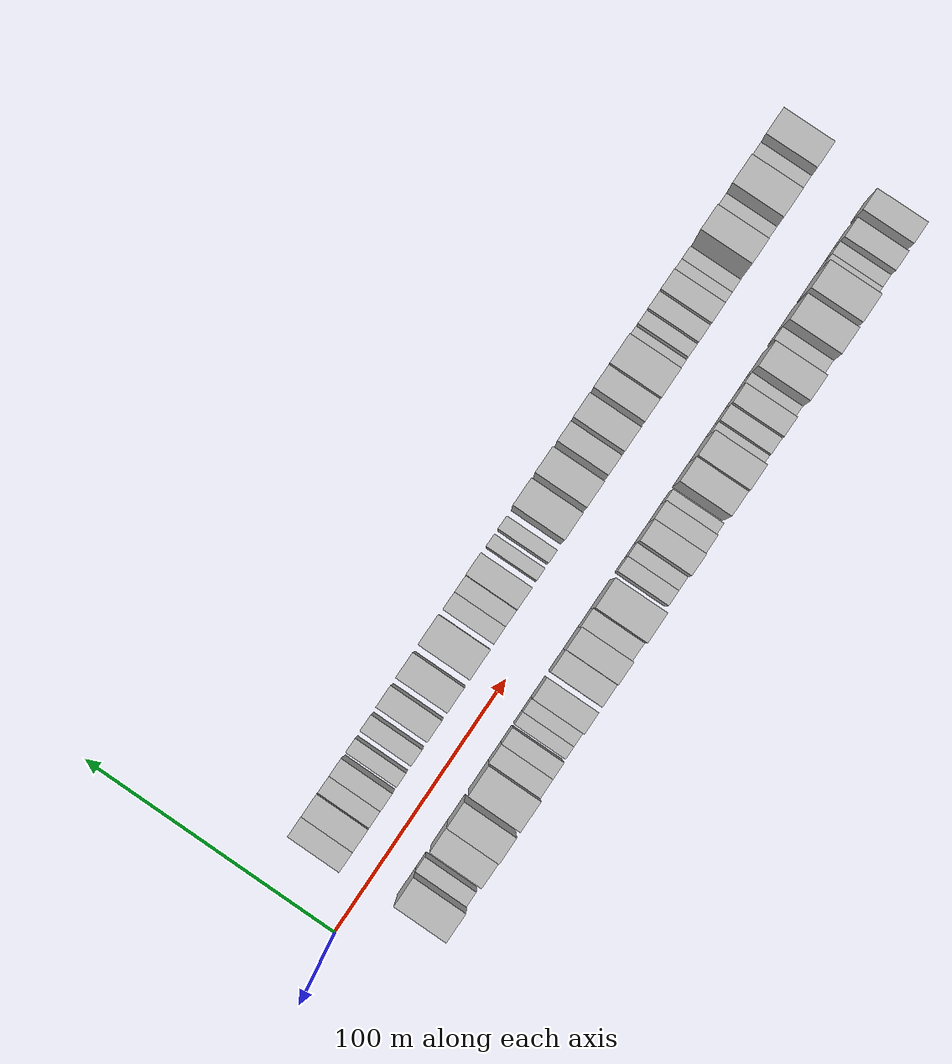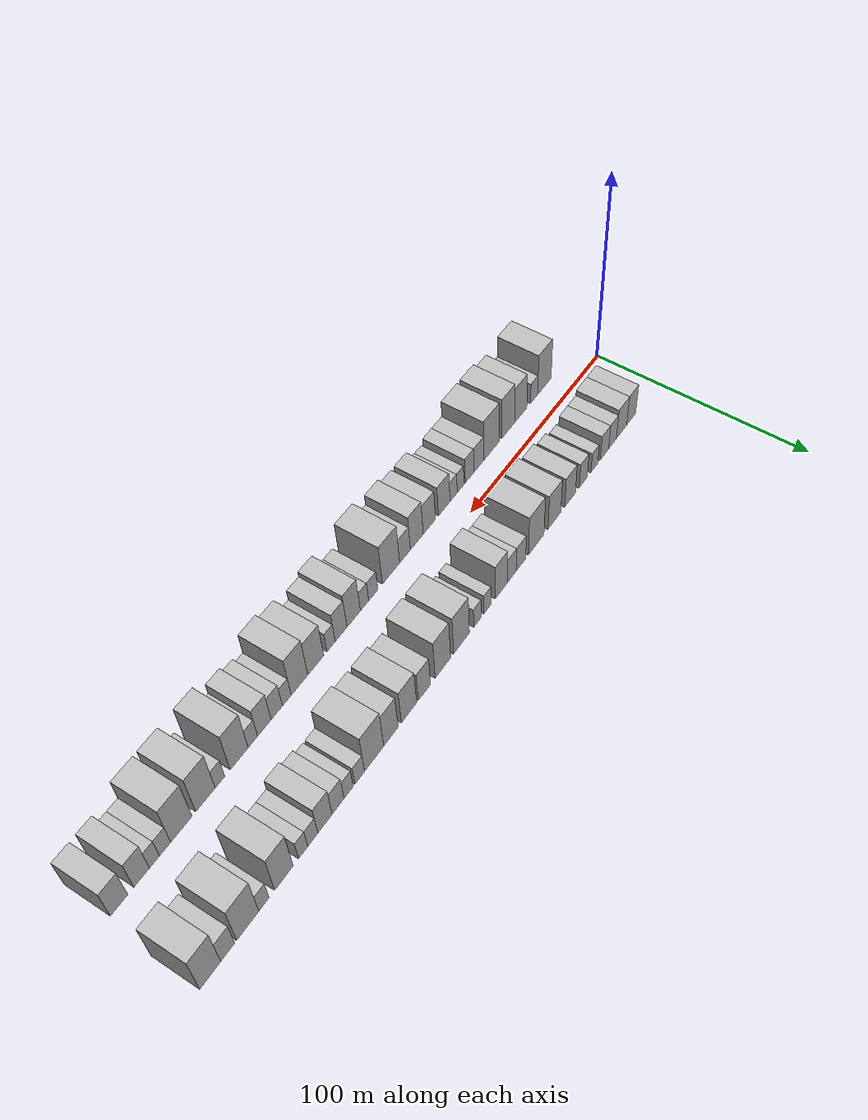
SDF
<sdf version="1.6">
 <world name="default">
  <scene>
   <sky><clouds><speed>12</speed></clouds></sky>
   <ambient>0.4 0.4 0.4 1</ambient>
   <background>0.7 0.7 0.7 1</background>
   <shadows>1</shadows>
  </scene>
  <gravity>0 0 -9.8066</gravity>
  <magnetic_field>6e-06 2.3e-05 -4.2e-05</magnetic_field>
  <physics default="0" name="default_physics" type="ode">
   <ode>
    <solver>
     <type>quick</type>
     <iters>10</iters>
     <sor>1.0</sor>
     <use_dynamic_moi_rescaling>0</use_dynamic_moi_rescaling>
    </solver>
    <constraints>
     <cfm>0</cfm>
     <erp>0.2</erp>
     <contact_max_correcting_vel>100</contact_max_correcting_vel>
     <contact_surface_layer>0.001</contact_surface_layer>
    </constraints>
   </ode>
   <max_step_size>0.004</max_step_size>
   <real_time_factor>1</real_time_factor>
   <real_time_update_rate>250</real_time_update_rate>
  </physics>
  <light name="sun" type="directional">
   <pose>0 0 10 0 0 0</pose>
   <diffuse>0.8 0.8 0.8 1</diffuse>
   <specular>0.2 0.2 0.2 1</specular>
   <attenuation>
    <range>1000</range>
    <constant>0.9</constant>
    <linear>0.01</linear>
    <quadratic>0.001</quadratic>
   </attenuation>
   <direction>-0.5 0.1 -0.9</direction>
  </light>
  <model name="building_1">
   <static>1</static>
   <pose>23.7935 20.0000 0 0.000000 0.000000 1.570796</pose>
   <link name="link">
    <pose>0 0 9.00 0 0 0</pose>
    <collision name="collision"><geometry><box><size>20.0000 7.5870 18.0000</size></box></geometry></collision>
    <visual name="visual">
     <cast_shadows>0</cast_shadows>
     <geometry><box><size>20.0000 7.5870 18.0000</size></box></geometry>
     <material>
      <script>
       <uri>model://HANNAS_wall/materials/scripts</uri>
       <uri>model://HANNAS_wall/materials/textures</uri>
       <name>vrc/HANNAS_wall</name>
      </script>
     </material>
    </visual>
   </link>
  </model>
  <model name="building_2">
   <static>1</static>
   <pose>31.9652 20.0000 0 0.000000 0.000000 1.570796</pose>
   <link name="link">
    <pose>0 0 9.00 0 0 0</pose>
    <collision name="collision"><geometry><box><size>20.0000 8.7565 18.0000</size></box></geometry></collision>
    <visual name="visual">
     <cast_shadows>0</cast_shadows>
     <geometry><box><size>20.0000 8.7565 18.0000</size></box></geometry>
     <material>
      <script>
       <uri>model://HANNAS_wall/materials/scripts</uri>
       <uri>model://HANNAS_wall/materials/textures</uri>
       <name>vrc/HANNAS_wall</name>
      </script>
     </material>
    </visual>
   </link>
  </model>
  <model name="building_3">
   <static>1</static>
   <pose>39.5538 20.0000 0 0.000000 0.000000 1.570796</pose>
   <link name="link">
    <pose>0 0 7.50 0 0 0</pose>
    <collision name="collision"><geometry><box><size>20.0000 6.4206 15.0000</size></box></geometry></collision>
    <visual name="visual">
     <cast_shadows>0</cast_shadows>
     <geometry><box><size>20.0000 6.4206 15.0000</size></box></geometry>
     <material>
      <script>
       <uri>model://HANNAS_wall/materials/scripts</uri>
       <uri>model://HANNAS_wall/materials/textures</uri>
       <name>vrc/HANNAS_wall</name>
      </script>
     </material>
    </visual>
   </link>
  </model>
  <model name="building_4">
   <static>1</static>
   <pose>46.2032 20.0000 0 0.000000 0.000000 1.570796</pose>
   <link name="link">
    <pose>0 0 7.50 0 0 0</pose>
    <collision name="collision"><geometry><box><size>20.0000 6.8781 15.0000</size></box></geometry></collision>
    <visual name="visual">
     <cast_shadows>0</cast_shadows>
     <geometry><box><size>20.0000 6.8781 15.0000</size></box></geometry>
     <material>
      <script>
       <uri>model://HANNAS_wall/materials/scripts</uri>
       <uri>model://HANNAS_wall/materials/textures</uri>
       <name>vrc/HANNAS_wall</name>
      </script>
     </material>
    </visual>
   </link>
  </model>
  <model name="building_5">
   <static>1</static>
   <pose>54.4073 20.0000 0 0.000000 0.000000 1.570796</pose>
   <link name="link">
    <pose>0 0 6.00 0 0 0</pose>
    <collision name="collision"><geometry><box><size>20.0000 5.5302 12.0000</size></box></geometry></collision>
    <visual name="visual">
     <cast_shadows>0</cast_shadows>
     <geometry><box><size>20.0000 5.5302 12.0000</size></box></geometry>
     <material>
      <script>
       <uri>model://HANNAS_wall/materials/scripts</uri>
       <uri>model://HANNAS_wall/materials/textures</uri>
       <name>vrc/HANNAS_wall</name>
      </script>
     </material>
    </visual>
   </link>
  </model>
  <model name="building_6">
   <static>1</static>
   <pose>63.3594 20.0000 0 0.000000 0.000000 1.570796</pose>
   <link name="link">
    <pose>0 0 7.50 0 0 0</pose>
    <collision name="collision"><geometry><box><size>20.0000 6.3739 15.0000</size></box></geometry></collision>
    <visual name="visual">
     <cast_shadows>0</cast_shadows>
     <geometry><box><size>20.0000 6.3739 15.0000</size></box></geometry>
     <material>
      <script>
       <uri>model://HANNAS_wall/materials/scripts</uri>
       <uri>model://HANNAS_wall/materials/textures</uri>
       <name>vrc/HANNAS_wall</name>
      </script>
     </material>
    </visual>
   </link>
  </model>
  <model name="building_7">
   <static>1</static>
   <pose>73.7651 20.0000 0 0.000000 0.000000 1.570796</pose>
   <link name="link">
    <pose>0 0 9.00 0 0 0</pose>
    <collision name="collision"><geometry><box><size>20.0000 8.4375 18.0000</size></box></geometry></collision>
    <visual name="visual">
     <cast_shadows>0</cast_shadows>
     <geometry><box><size>20.0000 8.4375 18.0000</size></box></geometry>
     <material>
      <script>
       <uri>model://HANNAS_wall/materials/scripts</uri>
       <uri>model://HANNAS_wall/materials/textures</uri>
       <name>vrc/HANNAS_wall</name>
      </script>
     </material>
    </visual>
   </link>
  </model>
  <model name="building_8">
   <static>1</static>
   <pose>85.8713 20.0000 0 0.000000 0.000000 1.570796</pose>
   <link name="link">
    <pose>0 0 10.50 0 0 0</pose>
    <collision name="collision"><geometry><box><size>20.0000 9.7750 21.0000</size></box></geometry></collision>
    <visual name="visual">
     <cast_shadows>0</cast_shadows>
     <geometry><box><size>20.0000 9.7750 21.0000</size></box></geometry>
     <material>
      <script>
       <uri>model://HANNAS_wall/materials/scripts</uri>
       <uri>model://HANNAS_wall/materials/textures</uri>
       <name>vrc/HANNAS_wall</name>
      </script>
     </material>
    </visual>
   </link>
  </model>
  <model name="building_9">
   <static>1</static>
   <pose>99.5591 20.0000 0 0.000000 0.000000 1.570796</pose>
   <link name="link">
    <pose>0 0 12.00 0 0 0</pose>
    <collision name="collision"><geometry><box><size>20.0000 11.6007 24.0000</size></box></geometry></collision>
    <visual name="visual">
     <cast_shadows>0</cast_shadows>
     <geometry><box><size>20.0000 11.6007 24.0000</size></box></geometry>
     <material>
      <script>
       <uri>model://HANNAS_wall/materials/scripts</uri>
       <uri>model://HANNAS_wall/materials/textures</uri>
       <name>vrc/HANNAS_wall</name>
      </script>
     </material>
    </visual>
   </link>
  </model>
  <model name="building_10">
   <static>1</static>
   <pose>110.7818 20.0000 0 0.000000 0.000000 1.570796</pose>
   <link name="link">
    <pose>0 0 7.50 0 0 0</pose>
    <collision name="collision"><geometry><box><size>20.0000 6.8447 15.0000</size></box></geometry></collision>
    <visual name="visual">
     <cast_shadows>0</cast_shadows>
     <geometry><box><size>20.0000 6.8447 15.0000</size></box></geometry>
     <material>
      <script>
       <uri>model://HANNAS_wall/materials/scripts</uri>
       <uri>model://HANNAS_wall/materials/textures</uri>
       <name>vrc/HANNAS_wall</name>
      </script>
     </material>
    </visual>
   </link>
  </model>
  <model name="building_11">
   <static>1</static>
   <pose>117.4213 20.0000 0 0.000000 0.000000 1.570796</pose>
   <link name="link">
    <pose>0 0 7.50 0 0 0</pose>
    <collision name="collision"><geometry><box><size>20.0000 6.4342 15.0000</size></box></geometry></collision>
    <visual name="visual">
     <cast_shadows>0</cast_shadows>
     <geometry><box><size>20.0000 6.4342 15.0000</size></box></geometry>
     <material>
      <script>
       <uri>model://HANNAS_wall/materials/scripts</uri>
       <uri>model://HANNAS_wall/materials/textures</uri>
       <name>vrc/HANNAS_wall</name>
      </script>
     </material>
    </visual>
   </link>
  </model>
  <model name="building_12">
   <static>1</static>
   <pose>124.9499 20.0000 0 0.000000 0.000000 1.570796</pose>
   <link name="link">
    <pose>0 0 10.50 0 0 0</pose>
    <collision name="collision"><geometry><box><size>20.0000 8.6229 21.0000</size></box></geometry></collision>
    <visual name="visual">
     <cast_shadows>0</cast_shadows>
     <geometry><box><size>20.0000 8.6229 21.0000</size></box></geometry>
     <material>
      <script>
       <uri>model://HANNAS_wall/materials/scripts</uri>
       <uri>model://HANNAS_wall/materials/textures</uri>
       <name>vrc/HANNAS_wall</name>
      </script>
     </material>
    </visual>
   </link>
  </model>
  <model name="building_13">
   <static>1</static>
   <pose>134.7088 20.0000 0 0.000000 0.000000 1.570796</pose>
   <link name="link">
    <pose>0 0 6.00 0 0 0</pose>
    <collision name="collision"><geometry><box><size>20.0000 4.8948 12.0000</size></box></geometry></collision>
    <visual name="visual">
     <cast_shadows>0</cast_shadows>
     <geometry><box><size>20.0000 4.8948 12.0000</size></box></geometry>
     <material>
      <script>
       <uri>model://HANNAS_wall/materials/scripts</uri>
       <uri>model://HANNAS_wall/materials/textures</uri>
       <name>vrc/HANNAS_wall</name>
      </script>
     </material>
    </visual>
   </link>
  </model>
  <model name="building_14">
   <static>1</static>
   <pose>141.7410 20.0000 0 0.000000 0.000000 1.570796</pose>
   <link name="link">
    <pose>0 0 6.00 0 0 0</pose>
    <collision name="collision"><geometry><box><size>20.0000 5.1697 12.0000</size></box></geometry></collision>
    <visual name="visual">
     <cast_shadows>0</cast_shadows>
     <geometry><box><size>20.0000 5.1697 12.0000</size></box></geometry>
     <material>
      <script>
       <uri>model://HANNAS_wall/materials/scripts</uri>
       <uri>model://HANNAS_wall/materials/textures</uri>
       <name>vrc/HANNAS_wall</name>
      </script>
     </material>
    </visual>
   </link>
  </model>
  <model name="building_15">
   <static>1</static>
   <pose>152.6574 20.0000 0 0.000000 0.000000 1.570796</pose>
   <link name="link">
    <pose>0 0 12.00 0 0 0</pose>
    <collision name="collision"><geometry><box><size>20.0000 10.6631 24.0000</size></box></geometry></collision>
    <visual name="visual">
     <cast_shadows>0</cast_shadows>
     <geometry><box><size>20.0000 10.6631 24.0000</size></box></geometry>
     <material>
      <script>
       <uri>model://HANNAS_wall/materials/scripts</uri>
       <uri>model://HANNAS_wall/materials/textures</uri>
       <name>vrc/HANNAS_wall</name>
      </script>
     </material>
    </visual>
   </link>
  </model>
  <model name="building_16">
   <static>1</static>
   <pose>165.0884 20.0000 0 0.000000 0.000000 1.570796</pose>
   <link name="link">
    <pose>0 0 12.00 0 0 0</pose>
    <collision name="collision"><geometry><box><size>20.0000 10.1989 24.0000</size></box></geometry></collision>
    <visual name="visual">
     <cast_shadows>0</cast_shadows>
     <geometry><box><size>20.0000 10.1989 24.0000</size></box></geometry>
     <material>
      <script>
       <uri>model://HANNAS_wall/materials/scripts</uri>
       <uri>model://HANNAS_wall/materials/textures</uri>
       <name>vrc/HANNAS_wall</name>
      </script>
     </material>
    </visual>
   </link>
  </model>
  <model name="building_17">
   <static>1</static>
   <pose>177.1372 20.0000 0 0.000000 0.000000 1.570796</pose>
   <link name="link">
    <pose>0 0 9.00 0 0 0</pose>
    <collision name="collision"><geometry><box><size>20.0000 7.8987 18.0000</size></box></geometry></collision>
    <visual name="visual">
     <cast_shadows>0</cast_shadows>
     <geometry><box><size>20.0000 7.8987 18.0000</size></box></geometry>
     <material>
      <script>
       <uri>model://HANNAS_wall/materials/scripts</uri>
       <uri>model://HANNAS_wall/materials/textures</uri>
       <name>vrc/HANNAS_wall</name>
      </script>
     </material>
    </visual>
   </link>
  </model>
  <model name="building_18">
   <static>1</static>
   <pose>186.9221 20.0000 0 0.000000 0.000000 1.570796</pose>
   <link name="link">
    <pose>0 0 10.50 0 0 0</pose>
    <collision name="collision"><geometry><box><size>20.0000 9.6711 21.0000</size></box></geometry></collision>
    <visual name="visual">
     <cast_shadows>0</cast_shadows>
     <geometry><box><size>20.0000 9.6711 21.0000</size></box></geometry>
     <material>
      <script>
       <uri>model://HANNAS_wall/materials/scripts</uri>
       <uri>model://HANNAS_wall/materials/textures</uri>
       <name>vrc/HANNAS_wall</name>
      </script>
     </material>
    </visual>
   </link>
  </model>
  <model name="building_19">
   <static>1</static>
   <pose>198.2208 20.0000 0 0.000000 0.000000 1.570796</pose>
   <link name="link">
    <pose>0 0 10.50 0 0 0</pose>
    <collision name="collision"><geometry><box><size>20.0000 8.9264 21.0000</size></box></geometry></collision>
    <visual name="visual">
     <cast_shadows>0</cast_shadows>
     <geometry><box><size>20.0000 8.9264 21.0000</size></box></geometry>
     <material>
      <script>
       <uri>model://HANNAS_wall/materials/scripts</uri>
       <uri>model://HANNAS_wall/materials/textures</uri>
       <name>vrc/HANNAS_wall</name>
      </script>
     </material>
    </visual>
   </link>
  </model>
  <model name="building_20">
   <static>1</static>
   <pose>208.4847 20.0000 0 0.000000 0.000000 1.570796</pose>
   <link name="link">
    <pose>0 0 12.00 0 0 0</pose>
    <collision name="collision"><geometry><box><size>20.0000 11.6013 24.0000</size></box></geometry></collision>
    <visual name="visual">
     <cast_shadows>0</cast_shadows>
     <geometry><box><size>20.0000 11.6013 24.0000</size></box></geometry>
     <material>
      <script>
       <uri>model://HANNAS_wall/materials/scripts</uri>
       <uri>model://HANNAS_wall/materials/textures</uri>
       <name>vrc/HANNAS_wall</name>
      </script>
     </material>
    </visual>
   </link>
  </model>
  <model name="building_21">
   <static>1</static>
   <pose>217.1560 20.0000 0 0.000000 0.000000 1.570796</pose>
   <link name="link">
    <pose>0 0 6.00 0 0 0</pose>
    <collision name="collision"><geometry><box><size>20.0000 5.7415 12.0000</size></box></geometry></collision>
    <visual name="visual">
     <cast_shadows>0</cast_shadows>
     <geometry><box><size>20.0000 5.7415 12.0000</size></box></geometry>
     <material>
      <script>
       <uri>model://HANNAS_wall/materials/scripts</uri>
       <uri>model://HANNAS_wall/materials/textures</uri>
       <name>vrc/HANNAS_wall</name>
      </script>
     </material>
    </visual>
   </link>
  </model>
  <model name="building_22">
   <static>1</static>
   <pose>223.7144 20.0000 0 0.000000 0.000000 1.570796</pose>
   <link name="link">
    <pose>0 0 6.00 0 0 0</pose>
    <collision name="collision"><geometry><box><size>20.0000 5.3753 12.0000</size></box></geometry></collision>
    <visual name="visual">
     <cast_shadows>0</cast_shadows>
     <geometry><box><size>20.0000 5.3753 12.0000</size></box></geometry>
     <material>
      <script>
       <uri>model://HANNAS_wall/materials/scripts</uri>
       <uri>model://HANNAS_wall/materials/textures</uri>
       <name>vrc/HANNAS_wall</name>
      </script>
     </material>
    </visual>
   </link>
  </model>
  <model name="building_23">
   <static>1</static>
   <pose>229.8600 20.0000 0 0.000000 0.000000 1.570796</pose>
   <link name="link">
    <pose>0 0 7.50 0 0 0</pose>
    <collision name="collision"><geometry><box><size>20.0000 6.9158 15.0000</size></box></geometry></collision>
    <visual name="visual">
     <cast_shadows>0</cast_shadows>
     <geometry><box><size>20.0000 6.9158 15.0000</size></box></geometry>
     <material>
      <script>
       <uri>model://HANNAS_wall/materials/scripts</uri>
       <uri>model://HANNAS_wall/materials/textures</uri>
       <name>vrc/HANNAS_wall</name>
      </script>
     </material>
    </visual>
   </link>
  </model>
  <model name="building_24">
   <static>1</static>
   <pose>237.3918 20.0000 0 0.000000 0.000000 1.570796</pose>
   <link name="link">
    <pose>0 0 9.00 0 0 0</pose>
    <collision name="collision"><geometry><box><size>20.0000 8.1478 18.0000</size></box></geometry></collision>
    <visual name="visual">
     <cast_shadows>0</cast_shadows>
     <geometry><box><size>20.0000 8.1478 18.0000</size></box></geometry>
     <material>
      <script>
       <uri>model://HANNAS_wall/materials/scripts</uri>
       <uri>model://HANNAS_wall/materials/textures</uri>
       <name>vrc/HANNAS_wall</name>
      </script>
     </material>
    </visual>
   </link>
  </model>
  <model name="building_25">
   <static>1</static>
   <pose>244.2864 20.0000 0 0.000000 0.000000 1.570796</pose>
   <link name="link">
    <pose>0 0 6.00 0 0 0</pose>
    <collision name="collision"><geometry><box><size>20.0000 5.6413 12.0000</size></box></geometry></collision>
    <visual name="visual">
     <cast_shadows>0</cast_shadows>
     <geometry><box><size>20.0000 5.6413 12.0000</size></box></geometry>
     <material>
      <script>
       <uri>model://HANNAS_wall/materials/scripts</uri>
       <uri>model://HANNAS_wall/materials/textures</uri>
       <name>vrc/HANNAS_wall</name>
      </script>
     </material>
    </visual>
   </link>
  </model>
  <model name="building_26">
   <static>1</static>
   <pose>249.6790 20.0000 0 0.000000 0.000000 1.570796</pose>
   <link name="link">
    <pose>0 0 6.00 0 0 0</pose>
    <collision name="collision"><geometry><box><size>20.0000 5.1438 12.0000</size></box></geometry></collision>
    <visual name="visual">
     <cast_shadows>0</cast_shadows>
     <geometry><box><size>20.0000 5.1438 12.0000</size></box></geometry>
     <material>
      <script>
       <uri>model://HANNAS_wall/materials/scripts</uri>
       <uri>model://HANNAS_wall/materials/textures</uri>
       <name>vrc/HANNAS_wall</name>
      </script>
     </material>
    </visual>
   </link>
  </model>
  <model name="building_27">
   <static>1</static>
   <pose>260.2648 20.0000 0 0.000000 0.000000 1.570796</pose>
   <link name="link">
    <pose>0 0 12.00 0 0 0</pose>
    <collision name="collision"><geometry><box><size>20.0000 10.0279 24.0000</size></box></geometry></collision>
    <visual name="visual">
     <cast_shadows>0</cast_shadows>
     <geometry><box><size>20.0000 10.0279 24.0000</size></box></geometry>
     <material>
      <script>
       <uri>model://HANNAS_wall/materials/scripts</uri>
       <uri>model://HANNAS_wall/materials/textures</uri>
       <name>vrc/HANNAS_wall</name>
      </script>
     </material>
    </visual>
   </link>
  </model>
  <model name="building_28">
   <static>1</static>
   <pose>270.9927 20.0000 0 0.000000 0.000000 1.570796</pose>
   <link name="link">
    <pose>0 0 6.00 0 0 0</pose>
    <collision name="collision"><geometry><box><size>20.0000 5.4278 12.0000</size></box></geometry></collision>
    <visual name="visual">
     <cast_shadows>0</cast_shadows>
     <geometry><box><size>20.0000 5.4278 12.0000</size></box></geometry>
     <material>
      <script>
       <uri>model://HANNAS_wall/materials/scripts</uri>
       <uri>model://HANNAS_wall/materials/textures</uri>
       <name>vrc/HANNAS_wall</name>
      </script>
     </material>
    </visual>
   </link>
  </model>
  <model name="building_29">
   <static>1</static>
   <pose>279.4799 20.0000 0 0.000000 0.000000 1.570796</pose>
   <link name="link">
    <pose>0 0 12.00 0 0 0</pose>
    <collision name="collision"><geometry><box><size>20.0000 11.5467 24.0000</size></box></geometry></collision>
    <visual name="visual">
     <cast_shadows>0</cast_shadows>
     <geometry><box><size>20.0000 11.5467 24.0000</size></box></geometry>
     <material>
      <script>
       <uri>model://HANNAS_wall/materials/scripts</uri>
       <uri>model://HANNAS_wall/materials/textures</uri>
       <name>vrc/HANNAS_wall</name>
      </script>
     </material>
    </visual>
   </link>
  </model>
  <model name="building_30">
   <static>1</static>
   <pose>289.8093 20.0000 0 0.000000 0.000000 1.570796</pose>
   <link name="link">
    <pose>0 0 7.50 0 0 0</pose>
    <collision name="collision"><geometry><box><size>20.0000 7.1120 15.0000</size></box></geometry></collision>
    <visual name="visual">
     <cast_shadows>0</cast_shadows>
     <geometry><box><size>20.0000 7.1120 15.0000</size></box></geometry>
     <material>
      <script>
       <uri>model://HANNAS_wall/materials/scripts</uri>
       <uri>model://HANNAS_wall/materials/textures</uri>
       <name>vrc/HANNAS_wall</name>
      </script>
     </material>
    </visual>
   </link>
  </model>
  <model name="building_31">
   <static>1</static>
   <pose>298.6134 20.0000 0 0.000000 0.000000 1.570796</pose>
   <link name="link">
    <pose>0 0 12.00 0 0 0</pose>
    <collision name="collision"><geometry><box><size>20.0000 10.4963 24.0000</size></box></geometry></collision>
    <visual name="visual">
     <cast_shadows>0</cast_shadows>
     <geometry><box><size>20.0000 10.4963 24.0000</size></box></geometry>
     <material>
      <script>
       <uri>model://HANNAS_wall/materials/scripts</uri>
       <uri>model://HANNAS_wall/materials/textures</uri>
       <name>vrc/HANNAS_wall</name>
      </script>
     </material>
    </visual>
   </link>
  </model>
  <model name="building_32">
   <static>1</static>
   <pose>27.4905 -20.0000 0 0.000000 0.000000 1.570796</pose>
   <link name="link">
    <pose>0 0 12.00 0 0 0</pose>
    <collision name="collision"><geometry><box><size>20.0000 10.9810 24.0000</size></box></geometry></collision>
    <visual name="visual">
     <cast_shadows>0</cast_shadows>
     <geometry><box><size>20.0000 10.9810 24.0000</size></box></geometry>
     <material>
      <script>
       <uri>model://HANNAS_wall/materials/scripts</uri>
       <uri>model://HANNAS_wall/materials/textures</uri>
       <name>vrc/HANNAS_wall</name>
      </script>
     </material>
    </visual>
   </link>
  </model>
  <model name="building_33">
   <static>1</static>
   <pose>35.8267 -20.0000 0 0.000000 0.000000 1.570796</pose>
   <link name="link">
    <pose>0 0 6.00 0 0 0</pose>
    <collision name="collision"><geometry><box><size>20.0000 5.6913 12.0000</size></box></geometry></collision>
    <visual name="visual">
     <cast_shadows>0</cast_shadows>
     <geometry><box><size>20.0000 5.6913 12.0000</size></box></geometry>
     <material>
      <script>
       <uri>model://HANNAS_wall/materials/scripts</uri>
       <uri>model://HANNAS_wall/materials/textures</uri>
       <name>vrc/HANNAS_wall</name>
      </script>
     </material>
    </visual>
   </link>
  </model>
  <model name="building_34">
   <static>1</static>
   <pose>46.5009 -20.0000 0 0.000000 0.000000 1.570796</pose>
   <link name="link">
    <pose>0 0 10.50 0 0 0</pose>
    <collision name="collision"><geometry><box><size>20.0000 9.6571 21.0000</size></box></geometry></collision>
    <visual name="visual">
     <cast_shadows>0</cast_shadows>
     <geometry><box><size>20.0000 9.6571 21.0000</size></box></geometry>
     <material>
      <script>
       <uri>model://HANNAS_wall/materials/scripts</uri>
       <uri>model://HANNAS_wall/materials/textures</uri>
       <name>vrc/HANNAS_wall</name>
      </script>
     </material>
    </visual>
   </link>
  </model>
  <model name="building_35">
   <static>1</static>
   <pose>56.3222 -20.0000 0 0.000000 0.000000 1.570796</pose>
   <link name="link">
    <pose>0 0 12.00 0 0 0</pose>
    <collision name="collision"><geometry><box><size>20.0000 9.9856 24.0000</size></box></geometry></collision>
    <visual name="visual">
     <cast_shadows>0</cast_shadows>
     <geometry><box><size>20.0000 9.9856 24.0000</size></box></geometry>
     <material>
      <script>
       <uri>model://HANNAS_wall/materials/scripts</uri>
       <uri>model://HANNAS_wall/materials/textures</uri>
       <name>vrc/HANNAS_wall</name>
      </script>
     </material>
    </visual>
   </link>
  </model>
  <model name="building_36">
   <static>1</static>
   <pose>69.1552 -20.0000 0 0.000000 0.000000 1.570796</pose>
   <link name="link">
    <pose>0 0 12.00 0 0 0</pose>
    <collision name="collision"><geometry><box><size>20.0000 11.6805 24.0000</size></box></geometry></collision>
    <visual name="visual">
     <cast_shadows>0</cast_shadows>
     <geometry><box><size>20.0000 11.6805 24.0000</size></box></geometry>
     <material>
      <script>
       <uri>model://HANNAS_wall/materials/scripts</uri>
       <uri>model://HANNAS_wall/materials/textures</uri>
       <name>vrc/HANNAS_wall</name>
      </script>
     </material>
    </visual>
   </link>
  </model>
  <model name="building_37">
   <static>1</static>
   <pose>78.6753 -20.0000 0 0.000000 0.000000 1.570796</pose>
   <link name="link">
    <pose>0 0 7.50 0 0 0</pose>
    <collision name="collision"><geometry><box><size>20.0000 7.3597 15.0000</size></box></geometry></collision>
    <visual name="visual">
     <cast_shadows>0</cast_shadows>
     <geometry><box><size>20.0000 7.3597 15.0000</size></box></geometry>
     <material>
      <script>
       <uri>model://HANNAS_wall/materials/scripts</uri>
       <uri>model://HANNAS_wall/materials/textures</uri>
       <name>vrc/HANNAS_wall</name>
      </script>
     </material>
    </visual>
   </link>
  </model>
  <model name="building_38">
   <static>1</static>
   <pose>85.5748 -20.0000 0 0.000000 0.000000 1.570796</pose>
   <link name="link">
    <pose>0 0 7.50 0 0 0</pose>
    <collision name="collision"><geometry><box><size>20.0000 6.4391 15.0000</size></box></geometry></collision>
    <visual name="visual">
     <cast_shadows>0</cast_shadows>
     <geometry><box><size>20.0000 6.4391 15.0000</size></box></geometry>
     <material>
      <script>
       <uri>model://HANNAS_wall/materials/scripts</uri>
       <uri>model://HANNAS_wall/materials/textures</uri>
       <name>vrc/HANNAS_wall</name>
      </script>
     </material>
    </visual>
   </link>
  </model>
  <model name="building_39">
   <static>1</static>
   <pose>92.2370 -20.0000 0 0.000000 0.000000 1.570796</pose>
   <link name="link">
    <pose>0 0 6.00 0 0 0</pose>
    <collision name="collision"><geometry><box><size>20.0000 4.8854 12.0000</size></box></geometry></collision>
    <visual name="visual">
     <cast_shadows>0</cast_shadows>
     <geometry><box><size>20.0000 4.8854 12.0000</size></box></geometry>
     <material>
      <script>
       <uri>model://HANNAS_wall/materials/scripts</uri>
       <uri>model://HANNAS_wall/materials/textures</uri>
       <name>vrc/HANNAS_wall</name>
      </script>
     </material>
    </visual>
   </link>
  </model>
  <model name="building_40">
   <static>1</static>
   <pose>97.3069 -20.0000 0 0.000000 0.000000 1.570796</pose>
   <link name="link">
    <pose>0 0 6.00 0 0 0</pose>
    <collision name="collision"><geometry><box><size>20.0000 5.2544 12.0000</size></box></geometry></collision>
    <visual name="visual">
     <cast_shadows>0</cast_shadows>
     <geometry><box><size>20.0000 5.2544 12.0000</size></box></geometry>
     <material>
      <script>
       <uri>model://HANNAS_wall/materials/scripts</uri>
       <uri>model://HANNAS_wall/materials/textures</uri>
       <name>vrc/HANNAS_wall</name>
      </script>
     </material>
    </visual>
   </link>
  </model>
  <model name="building_41">
   <static>1</static>
   <pose>104.1096 -20.0000 0 0.000000 0.000000 1.570796</pose>
   <link name="link">
    <pose>0 0 9.00 0 0 0</pose>
    <collision name="collision"><geometry><box><size>20.0000 8.3511 18.0000</size></box></geometry></collision>
    <visual name="visual">
     <cast_shadows>0</cast_shadows>
     <geometry><box><size>20.0000 8.3511 18.0000</size></box></geometry>
     <material>
      <script>
       <uri>model://HANNAS_wall/materials/scripts</uri>
       <uri>model://HANNAS_wall/materials/textures</uri>
       <name>vrc/HANNAS_wall</name>
      </script>
     </material>
    </visual>
   </link>
  </model>
  <model name="building_42">
   <static>1</static>
   <pose>114.6171 -20.0000 0 0.000000 0.000000 1.570796</pose>
   <link name="link">
    <pose>0 0 9.00 0 0 0</pose>
    <collision name="collision"><geometry><box><size>20.0000 8.6640 18.0000</size></box></geometry></collision>
    <visual name="visual">
     <cast_shadows>0</cast_shadows>
     <geometry><box><size>20.0000 8.6640 18.0000</size></box></geometry>
     <material>
      <script>
       <uri>model://HANNAS_wall/materials/scripts</uri>
       <uri>model://HANNAS_wall/materials/textures</uri>
       <name>vrc/HANNAS_wall</name>
      </script>
     </material>
    </visual>
   </link>
  </model>
  <model name="building_43">
   <static>1</static>
   <pose>123.3844 -20.0000 0 0.000000 0.000000 1.570796</pose>
   <link name="link">
    <pose>0 0 10.50 0 0 0</pose>
    <collision name="collision"><geometry><box><size>20.0000 8.8706 21.0000</size></box></geometry></collision>
    <visual name="visual">
     <cast_shadows>0</cast_shadows>
     <geometry><box><size>20.0000 8.8706 21.0000</size></box></geometry>
     <material>
      <script>
       <uri>model://HANNAS_wall/materials/scripts</uri>
       <uri>model://HANNAS_wall/materials/textures</uri>
       <name>vrc/HANNAS_wall</name>
      </script>
     </material>
    </visual>
   </link>
  </model>
  <model name="building_44">
   <static>1</static>
   <pose>131.4586 -20.0000 0 0.000000 0.000000 1.570796</pose>
   <link name="link">
    <pose>0 0 7.50 0 0 0</pose>
    <collision name="collision"><geometry><box><size>20.0000 7.2777 15.0000</size></box></geometry></collision>
    <visual name="visual">
     <cast_shadows>0</cast_shadows>
     <geometry><box><size>20.0000 7.2777 15.0000</size></box></geometry>
     <material>
      <script>
       <uri>model://HANNAS_wall/materials/scripts</uri>
       <uri>model://HANNAS_wall/materials/textures</uri>
       <name>vrc/HANNAS_wall</name>
      </script>
     </material>
    </visual>
   </link>
  </model>
  <model name="building_45">
   <static>1</static>
   <pose>140.8848 -20.0000 0 0.000000 0.000000 1.570796</pose>
   <link name="link">
    <pose>0 0 12.00 0 0 0</pose>
    <collision name="collision"><geometry><box><size>20.0000 11.5747 24.0000</size></box></geometry></collision>
    <visual name="visual">
     <cast_shadows>0</cast_shadows>
     <geometry><box><size>20.0000 11.5747 24.0000</size></box></geometry>
     <material>
      <script>
       <uri>model://HANNAS_wall/materials/scripts</uri>
       <uri>model://HANNAS_wall/materials/textures</uri>
       <name>vrc/HANNAS_wall</name>
      </script>
     </material>
    </visual>
   </link>
  </model>
  <model name="building_46">
   <static>1</static>
   <pose>152.6714 -20.0000 0 0.000000 0.000000 1.570796</pose>
   <link name="link">
    <pose>0 0 6.00 0 0 0</pose>
    <collision name="collision"><geometry><box><size>20.0000 5.9986 12.0000</size></box></geometry></collision>
    <visual name="visual">
     <cast_shadows>0</cast_shadows>
     <geometry><box><size>20.0000 5.9986 12.0000</size></box></geometry>
     <material>
      <script>
       <uri>model://HANNAS_wall/materials/scripts</uri>
       <uri>model://HANNAS_wall/materials/textures</uri>
       <name>vrc/HANNAS_wall</name>
      </script>
     </material>
    </visual>
   </link>
  </model>
  <model name="building_47">
   <static>1</static>
   <pose>158.3522 -20.0000 0 0.000000 0.000000 1.570796</pose>
   <link name="link">
    <pose>0 0 6.00 0 0 0</pose>
    <collision name="collision"><geometry><box><size>20.0000 5.3630 12.0000</size></box></geometry></collision>
    <visual name="visual">
     <cast_shadows>0</cast_shadows>
     <geometry><box><size>20.0000 5.3630 12.0000</size></box></geometry>
     <material>
      <script>
       <uri>model://HANNAS_wall/materials/scripts</uri>
       <uri>model://HANNAS_wall/materials/textures</uri>
       <name>vrc/HANNAS_wall</name>
      </script>
     </material>
    </visual>
   </link>
  </model>
  <model name="building_48">
   <static>1</static>
   <pose>165.3166 -20.0000 0 0.000000 0.000000 1.570796</pose>
   <link name="link">
    <pose>0 0 10.50 0 0 0</pose>
    <collision name="collision"><geometry><box><size>20.0000 8.5658 21.0000</size></box></geometry></collision>
    <visual name="visual">
     <cast_shadows>0</cast_shadows>
     <geometry><box><size>20.0000 8.5658 21.0000</size></box></geometry>
     <material>
      <script>
       <uri>model://HANNAS_wall/materials/scripts</uri>
       <uri>model://HANNAS_wall/materials/textures</uri>
       <name>vrc/HANNAS_wall</name>
      </script>
     </material>
    </visual>
   </link>
  </model>
  <model name="building_49">
   <static>1</static>
   <pose>173.3273 -20.0000 0 0.000000 0.000000 1.570796</pose>
   <link name="link">
    <pose>0 0 9.00 0 0 0</pose>
    <collision name="collision"><geometry><box><size>20.0000 7.4556 18.0000</size></box></geometry></collision>
    <visual name="visual">
     <cast_shadows>0</cast_shadows>
     <geometry><box><size>20.0000 7.4556 18.0000</size></box></geometry>
     <material>
      <script>
       <uri>model://HANNAS_wall/materials/scripts</uri>
       <uri>model://HANNAS_wall/materials/textures</uri>
       <name>vrc/HANNAS_wall</name>
      </script>
     </material>
    </visual>
   </link>
  </model>
  <model name="building_50">
   <static>1</static>
   <pose>179.6098 -20.0000 0 0.000000 0.000000 1.570796</pose>
   <link name="link">
    <pose>0 0 6.00 0 0 0</pose>
    <collision name="collision"><geometry><box><size>20.0000 5.1095 12.0000</size></box></geometry></collision>
    <visual name="visual">
     <cast_shadows>0</cast_shadows>
     <geometry><box><size>20.0000 5.1095 12.0000</size></box></geometry>
     <material>
      <script>
       <uri>model://HANNAS_wall/materials/scripts</uri>
       <uri>model://HANNAS_wall/materials/textures</uri>
       <name>vrc/HANNAS_wall</name>
      </script>
     </material>
    </visual>
   </link>
  </model>
  <model name="building_51">
   <static>1</static>
   <pose>189.0306 -20.0000 0 0.000000 0.000000 1.570796</pose>
   <link name="link">
    <pose>0 0 10.50 0 0 0</pose>
    <collision name="collision"><geometry><box><size>20.0000 9.7321 21.0000</size></box></geometry></collision>
    <visual name="visual">
     <cast_shadows>0</cast_shadows>
     <geometry><box><size>20.0000 9.7321 21.0000</size></box></geometry>
     <material>
      <script>
       <uri>model://HANNAS_wall/materials/scripts</uri>
       <uri>model://HANNAS_wall/materials/textures</uri>
       <name>vrc/HANNAS_wall</name>
      </script>
     </material>
    </visual>
   </link>
  </model>
  <model name="building_52">
   <static>1</static>
   <pose>198.8782 -20.0000 0 0.000000 0.000000 1.570796</pose>
   <link name="link">
    <pose>0 0 12.00 0 0 0</pose>
    <collision name="collision"><geometry><box><size>20.0000 9.9631 24.0000</size></box></geometry></collision>
    <visual name="visual">
     <cast_shadows>0</cast_shadows>
     <geometry><box><size>20.0000 9.9631 24.0000</size></box></geometry>
     <material>
      <script>
       <uri>model://HANNAS_wall/materials/scripts</uri>
       <uri>model://HANNAS_wall/materials/textures</uri>
       <name>vrc/HANNAS_wall</name>
      </script>
     </material>
    </visual>
   </link>
  </model>
  <model name="building_53">
   <static>1</static>
   <pose>206.4517 -20.0000 0 0.000000 0.000000 1.570796</pose>
   <link name="link">
    <pose>0 0 6.00 0 0 0</pose>
    <collision name="collision"><geometry><box><size>20.0000 5.1838 12.0000</size></box></geometry></collision>
    <visual name="visual">
     <cast_shadows>0</cast_shadows>
     <geometry><box><size>20.0000 5.1838 12.0000</size></box></geometry>
     <material>
      <script>
       <uri>model://HANNAS_wall/materials/scripts</uri>
       <uri>model://HANNAS_wall/materials/textures</uri>
       <name>vrc/HANNAS_wall</name>
      </script>
     </material>
    </visual>
   </link>
  </model>
  <model name="building_54">
   <static>1</static>
   <pose>212.3059 -20.0000 0 0.000000 0.000000 1.570796</pose>
   <link name="link">
    <pose>0 0 7.50 0 0 0</pose>
    <collision name="collision"><geometry><box><size>20.0000 6.5247 15.0000</size></box></geometry></collision>
    <visual name="visual">
     <cast_shadows>0</cast_shadows>
     <geometry><box><size>20.0000 6.5247 15.0000</size></box></geometry>
     <material>
      <script>
       <uri>model://HANNAS_wall/materials/scripts</uri>
       <uri>model://HANNAS_wall/materials/textures</uri>
       <name>vrc/HANNAS_wall</name>
      </script>
     </material>
    </visual>
   </link>
  </model>
  <model name="building_55">
   <static>1</static>
   <pose>219.4754 -20.0000 0 0.000000 0.000000 1.570796</pose>
   <link name="link">
    <pose>0 0 9.00 0 0 0</pose>
    <collision name="collision"><geometry><box><size>20.0000 7.8142 18.0000</size></box></geometry></collision>
    <visual name="visual">
     <cast_shadows>0</cast_shadows>
     <geometry><box><size>20.0000 7.8142 18.0000</size></box></geometry>
     <material>
      <script>
       <uri>model://HANNAS_wall/materials/scripts</uri>
       <uri>model://HANNAS_wall/materials/textures</uri>
       <name>vrc/HANNAS_wall</name>
      </script>
     </material>
    </visual>
   </link>
  </model>
  <model name="building_56">
   <static>1</static>
   <pose>226.0486 -20.0000 0 0.000000 0.000000 1.570796</pose>
   <link name="link">
    <pose>0 0 6.00 0 0 0</pose>
    <collision name="collision"><geometry><box><size>20.0000 5.3323 12.0000</size></box></geometry></collision>
    <visual name="visual">
     <cast_shadows>0</cast_shadows>
     <geometry><box><size>20.0000 5.3323 12.0000</size></box></geometry>
     <material>
      <script>
       <uri>model://HANNAS_wall/materials/scripts</uri>
       <uri>model://HANNAS_wall/materials/textures</uri>
       <name>vrc/HANNAS_wall</name>
      </script>
     </material>
    </visual>
   </link>
  </model>
  <model name="building_57">
   <static>1</static>
   <pose>233.7494 -20.0000 0 0.000000 0.000000 1.570796</pose>
   <link name="link">
    <pose>0 0 12.00 0 0 0</pose>
    <collision name="collision"><geometry><box><size>20.0000 10.0693 24.0000</size></box></geometry></collision>
    <visual name="visual">
     <cast_shadows>0</cast_shadows>
     <geometry><box><size>20.0000 10.0693 24.0000</size></box></geometry>
     <material>
      <script>
       <uri>model://HANNAS_wall/materials/scripts</uri>
       <uri>model://HANNAS_wall/materials/textures</uri>
       <name>vrc/HANNAS_wall</name>
      </script>
     </material>
    </visual>
   </link>
  </model>
  <model name="building_58">
   <static>1</static>
   <pose>244.3952 -20.0000 0 0.000000 0.000000 1.570796</pose>
   <link name="link">
    <pose>0 0 6.00 0 0 0</pose>
    <collision name="collision"><geometry><box><size>20.0000 5.2221 12.0000</size></box></geometry></collision>
    <visual name="visual">
     <cast_shadows>0</cast_shadows>
     <geometry><box><size>20.0000 5.2221 12.0000</size></box></geometry>
     <material>
      <script>
       <uri>model://HANNAS_wall/materials/scripts</uri>
       <uri>model://HANNAS_wall/materials/textures</uri>
       <name>vrc/HANNAS_wall</name>
      </script>
     </material>
    </visual>
   </link>
  </model>
  <model name="building_59">
   <static>1</static>
   <pose>252.2390 -20.0000 0 0.000000 0.000000 1.570796</pose>
   <link name="link">
    <pose>0 0 12.00 0 0 0</pose>
    <collision name="collision"><geometry><box><size>20.0000 10.4656 24.0000</size></box></geometry></collision>
    <visual name="visual">
     <cast_shadows>0</cast_shadows>
     <geometry><box><size>20.0000 10.4656 24.0000</size></box></geometry>
     <material>
      <script>
       <uri>model://HANNAS_wall/materials/scripts</uri>
       <uri>model://HANNAS_wall/materials/textures</uri>
       <name>vrc/HANNAS_wall</name>
      </script>
     </material>
    </visual>
   </link>
  </model>
  <model name="building_60">
   <static>1</static>
   <pose>265.0601 -20.0000 0 0.000000 0.000000 1.570796</pose>
   <link name="link">
    <pose>0 0 12.00 0 0 0</pose>
    <collision name="collision"><geometry><box><size>20.0000 11.1766 24.0000</size></box></geometry></collision>
    <visual name="visual">
     <cast_shadows>0</cast_shadows>
     <geometry><box><size>20.0000 11.1766 24.0000</size></box></geometry>
     <material>
      <script>
       <uri>model://HANNAS_wall/materials/scripts</uri>
       <uri>model://HANNAS_wall/materials/textures</uri>
       <name>vrc/HANNAS_wall</name>
      </script>
     </material>
    </visual>
   </link>
  </model>
  <model name="building_61">
   <static>1</static>
   <pose>273.5473 -20.0000 0 0.000000 0.000000 1.570796</pose>
   <link name="link">
    <pose>0 0 6.00 0 0 0</pose>
    <collision name="collision"><geometry><box><size>20.0000 5.7977 12.0000</size></box></geometry></collision>
    <visual name="visual">
     <cast_shadows>0</cast_shadows>
     <geometry><box><size>20.0000 5.7977 12.0000</size></box></geometry>
     <material>
      <script>
       <uri>model://HANNAS_wall/materials/scripts</uri>
       <uri>model://HANNAS_wall/materials/textures</uri>
       <name>vrc/HANNAS_wall</name>
      </script>
     </material>
    </visual>
   </link>
  </model>
  <model name="building_62">
   <static>1</static>
   <pose>278.9661 -20.0000 0 0.000000 0.000000 1.570796</pose>
   <link name="link">
    <pose>0 0 6.00 0 0 0</pose>
    <collision name="collision"><geometry><box><size>20.0000 5.0399 12.0000</size></box></geometry></collision>
    <visual name="visual">
     <cast_shadows>0</cast_shadows>
     <geometry><box><size>20.0000 5.0399 12.0000</size></box></geometry>
     <material>
      <script>
       <uri>model://HANNAS_wall/materials/scripts</uri>
       <uri>model://HANNAS_wall/materials/textures</uri>
       <name>vrc/HANNAS_wall</name>
      </script>
     </material>
    </visual>
   </link>
  </model>
  <model name="building_63">
   <static>1</static>
   <pose>285.4106 -20.0000 0 0.000000 0.000000 1.570796</pose>
   <link name="link">
    <pose>0 0 9.00 0 0 0</pose>
    <collision name="collision"><geometry><box><size>20.0000 7.8490 18.0000</size></box></geometry></collision>
    <visual name="visual">
     <cast_shadows>0</cast_shadows>
     <geometry><box><size>20.0000 7.8490 18.0000</size></box></geometry>
     <material>
      <script>
       <uri>model://HANNAS_wall/materials/scripts</uri>
       <uri>model://HANNAS_wall/materials/textures</uri>
       <name>vrc/HANNAS_wall</name>
      </script>
     </material>
    </visual>
   </link>
  </model>
  <model name="building_64">
   <static>1</static>
   <pose>296.6237 -20.0000 0 0.000000 0.000000 1.570796</pose>
   <link name="link">
    <pose>0 0 9.00 0 0 0</pose>
    <collision name="collision"><geometry><box><size>20.0000 8.5773 18.0000</size></box></geometry></collision>
    <visual name="visual">
     <cast_shadows>0</cast_shadows>
     <geometry><box><size>20.0000 8.5773 18.0000</size></box></geometry>
     <material>
      <script>
       <uri>model://HANNAS_wall/materials/scripts</uri>
       <uri>model://HANNAS_wall/materials/textures</uri>
       <name>vrc/HANNAS_wall</name>
      </script>
     </material>
    </visual>
   </link>
  </model>
 </world>
</sdf>
